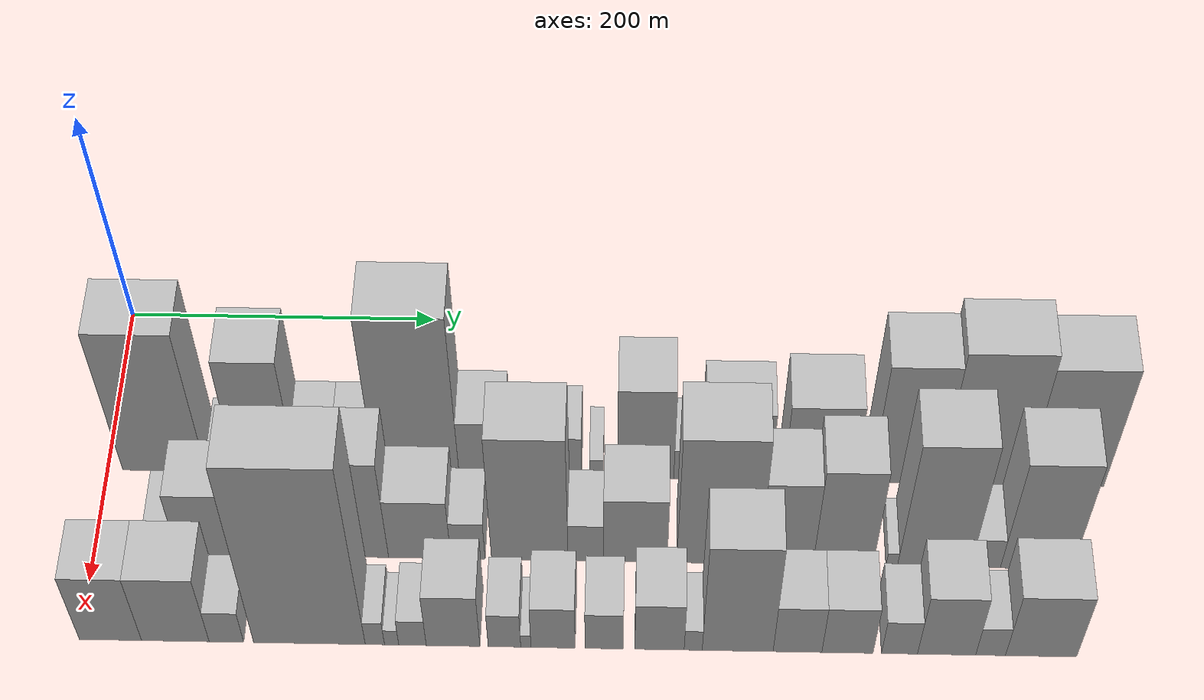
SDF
<sdf version="1.6">
 <world name="default">
  <model name="building_17">
   <static>1</static>
   <pose>100.0000 36.2147 0 0.000000 0.000000 0.000000</pose>
   <link name="link">
    <pose>0 0 75.00 0 0 0</pose>
    <collision name="collision"><geometry><box><size>40.0000 52.8672 150.0000</size></box></geometry></collision>
    <visual name="visual">
     <cast_shadows>0</cast_shadows>
     <geometry><box><size>40.0000 52.8672 150.0000</size></box></geometry>
     <material>
      <script>
       <uri>model://HANNAS_wall/materials/scripts</uri>
       <uri>model://HANNAS_wall/materials/textures</uri>
       <name>vrc/HANNAS_wall</name>
      </script>
     </material>
    </visual>
   </link>
  </model>
  <model name="building_18">
   <static>1</static>
   <pose>100.0000 71.1362 0 0.000000 0.000000 0.000000</pose>
   <link name="link">
    <pose>0 0 12.00 0 0 0</pose>
    <collision name="collision"><geometry><box><size>40.0000 10.9758 24.0000</size></box></geometry></collision>
    <visual name="visual">
     <cast_shadows>0</cast_shadows>
     <geometry><box><size>40.0000 10.9758 24.0000</size></box></geometry>
     <material>
      <script>
       <uri>model://HANNAS_wall/materials/scripts</uri>
       <uri>model://HANNAS_wall/materials/textures</uri>
       <name>vrc/HANNAS_wall</name>
      </script>
     </material>
    </visual>
   </link>
  </model>
  <model name="building_19">
   <static>1</static>
   <pose>100.0000 100.8529 0 0.000000 0.000000 0.000000</pose>
   <link name="link">
    <pose>0 0 61.50 0 0 0</pose>
    <collision name="collision"><geometry><box><size>40.0000 38.4576 123.0000</size></box></geometry></collision>
    <visual name="visual">
     <cast_shadows>0</cast_shadows>
     <geometry><box><size>40.0000 38.4576 123.0000</size></box></geometry>
     <material>
      <script>
       <uri>model://HANNAS_wall/materials/scripts</uri>
       <uri>model://HANNAS_wall/materials/textures</uri>
       <name>vrc/HANNAS_wall</name>
      </script>
     </material>
    </visual>
   </link>
  </model>
  <model name="building_20">
   <static>1</static>
   <pose>100.0000 132.8701 0 0.000000 0.000000 0.000000</pose>
   <link name="link">
    <pose>0 0 22.50 0 0 0</pose>
    <collision name="collision"><geometry><box><size>40.0000 25.5769 45.0000</size></box></geometry></collision>
    <visual name="visual">
     <cast_shadows>0</cast_shadows>
     <geometry><box><size>40.0000 25.5769 45.0000</size></box></geometry>
     <material>
      <script>
       <uri>model://HANNAS_wall/materials/scripts</uri>
       <uri>model://HANNAS_wall/materials/textures</uri>
       <name>vrc/HANNAS_wall</name>
      </script>
     </material>
    </visual>
   </link>
  </model>
  <model name="building_21">
   <static>1</static>
   <pose>100.0000 157.6431 0 0.000000 0.000000 0.000000</pose>
   <link name="link">
    <pose>0 0 22.50 0 0 0</pose>
    <collision name="collision"><geometry><box><size>40.0000 23.9690 45.0000</size></box></geometry></collision>
    <visual name="visual">
     <cast_shadows>0</cast_shadows>
     <geometry><box><size>40.0000 23.9690 45.0000</size></box></geometry>
     <material>
      <script>
       <uri>model://HANNAS_wall/materials/scripts</uri>
       <uri>model://HANNAS_wall/materials/textures</uri>
       <name>vrc/HANNAS_wall</name>
      </script>
     </material>
    </visual>
   </link>
  </model>
  <model name="building_22">
   <static>1</static>
   <pose>100.0000 196.2056 0 0.000000 0.000000 0.000000</pose>
   <link name="link">
    <pose>0 0 85.50 0 0 0</pose>
    <collision name="collision"><geometry><box><size>40.0000 53.1561 171.0000</size></box></geometry></collision>
    <visual name="visual">
     <cast_shadows>0</cast_shadows>
     <geometry><box><size>40.0000 53.1561 171.0000</size></box></geometry>
     <material>
      <script>
       <uri>model://HANNAS_wall/materials/scripts</uri>
       <uri>model://HANNAS_wall/materials/textures</uri>
       <name>vrc/HANNAS_wall</name>
      </script>
     </material>
    </visual>
   </link>
  </model>
  <model name="building_23">
   <static>1</static>
   <pose>100.0000 238.1051 0 0.000000 0.000000 0.000000</pose>
   <link name="link">
    <pose>0 0 30.00 0 0 0</pose>
    <collision name="collision"><geometry><box><size>40.0000 30.6430 60.0000</size></box></geometry></collision>
    <visual name="visual">
     <cast_shadows>0</cast_shadows>
     <geometry><box><size>40.0000 30.6430 60.0000</size></box></geometry>
     <material>
      <script>
       <uri>model://HANNAS_wall/materials/scripts</uri>
       <uri>model://HANNAS_wall/materials/textures</uri>
       <name>vrc/HANNAS_wall</name>
      </script>
     </material>
    </visual>
   </link>
  </model>
  <model name="building_24">
   <static>1</static>
   <pose>100.0000 265.1412 0 0.000000 0.000000 0.000000</pose>
   <link name="link">
    <pose>0 0 21.00 0 0 0</pose>
    <collision name="collision"><geometry><box><size>40.0000 23.4290 42.0000</size></box></geometry></collision>
    <visual name="visual">
     <cast_shadows>0</cast_shadows>
     <geometry><box><size>40.0000 23.4290 42.0000</size></box></geometry>
     <material>
      <script>
       <uri>model://HANNAS_wall/materials/scripts</uri>
       <uri>model://HANNAS_wall/materials/textures</uri>
       <name>vrc/HANNAS_wall</name>
      </script>
     </material>
    </visual>
   </link>
  </model>
  <model name="building_25">
   <static>1</static>
   <pose>100.0000 288.4493 0 0.000000 0.000000 0.000000</pose>
   <link name="link">
    <pose>0 0 22.50 0 0 0</pose>
    <collision name="collision"><geometry><box><size>40.0000 23.1873 45.0000</size></box></geometry></collision>
    <visual name="visual">
     <cast_shadows>0</cast_shadows>
     <geometry><box><size>40.0000 23.1873 45.0000</size></box></geometry>
     <material>
      <script>
       <uri>model://HANNAS_wall/materials/scripts</uri>
       <uri>model://HANNAS_wall/materials/textures</uri>
       <name>vrc/HANNAS_wall</name>
      </script>
     </material>
    </visual>
   </link>
  </model>
  <model name="building_26">
   <static>1</static>
   <pose>100.0000 309.3964 0 0.000000 0.000000 0.000000</pose>
   <link name="link">
    <pose>0 0 10.50 0 0 0</pose>
    <collision name="collision"><geometry><box><size>40.0000 8.7069 21.0000</size></box></geometry></collision>
    <visual name="visual">
     <cast_shadows>0</cast_shadows>
     <geometry><box><size>40.0000 8.7069 21.0000</size></box></geometry>
     <material>
      <script>
       <uri>model://HANNAS_wall/materials/scripts</uri>
       <uri>model://HANNAS_wall/materials/textures</uri>
       <name>vrc/HANNAS_wall</name>
      </script>
     </material>
    </visual>
   </link>
  </model>
  <model name="building_27">
   <static>1</static>
   <pose>100.0000 340.4459 0 0.000000 0.000000 0.000000</pose>
   <link name="link">
    <pose>0 0 49.50 0 0 0</pose>
    <collision name="collision"><geometry><box><size>40.0000 35.3920 99.0000</size></box></geometry></collision>
    <visual name="visual">
     <cast_shadows>0</cast_shadows>
     <geometry><box><size>40.0000 35.3920 99.0000</size></box></geometry>
     <material>
      <script>
       <uri>model://HANNAS_wall/materials/scripts</uri>
       <uri>model://HANNAS_wall/materials/textures</uri>
       <name>vrc/HANNAS_wall</name>
      </script>
     </material>
    </visual>
   </link>
  </model>
  <model name="building_28">
   <static>1</static>
   <pose>100.0000 367.2024 0 0.000000 0.000000 0.000000</pose>
   <link name="link">
    <pose>0 0 16.50 0 0 0</pose>
    <collision name="collision"><geometry><box><size>40.0000 18.1211 33.0000</size></box></geometry></collision>
    <visual name="visual">
     <cast_shadows>0</cast_shadows>
     <geometry><box><size>40.0000 18.1211 33.0000</size></box></geometry>
     <material>
      <script>
       <uri>model://HANNAS_wall/materials/scripts</uri>
       <uri>model://HANNAS_wall/materials/textures</uri>
       <name>vrc/HANNAS_wall</name>
      </script>
     </material>
    </visual>
   </link>
  </model>
  <model name="building_29">
   <static>1</static>
   <pose>100.0000 397.7496 0 0.000000 0.000000 0.000000</pose>
   <link name="link">
    <pose>0 0 37.50 0 0 0</pose>
    <collision name="collision"><geometry><box><size>40.0000 42.9734 75.0000</size></box></geometry></collision>
    <visual name="visual">
     <cast_shadows>0</cast_shadows>
     <geometry><box><size>40.0000 42.9734 75.0000</size></box></geometry>
     <material>
      <script>
       <uri>model://HANNAS_wall/materials/scripts</uri>
       <uri>model://HANNAS_wall/materials/textures</uri>
       <name>vrc/HANNAS_wall</name>
      </script>
     </material>
    </visual>
   </link>
  </model>
  <model name="building_30">
   <static>1</static>
   <pose>100.0000 449.7620 0 0.000000 0.000000 0.000000</pose>
   <link name="link">
    <pose>0 0 42.00 0 0 0</pose>
    <collision name="collision"><geometry><box><size>40.0000 45.0514 84.0000</size></box></geometry></collision>
    <visual name="visual">
     <cast_shadows>0</cast_shadows>
     <geometry><box><size>40.0000 45.0514 84.0000</size></box></geometry>
     <material>
      <script>
       <uri>model://HANNAS_wall/materials/scripts</uri>
       <uri>model://HANNAS_wall/materials/textures</uri>
       <name>vrc/HANNAS_wall</name>
      </script>
     </material>
    </visual>
   </link>
  </model>
  <model name="building_31">
   <static>1</static>
   <pose>100.0000 503.7873 0 0.000000 0.000000 0.000000</pose>
   <link name="link">
    <pose>0 0 64.50 0 0 0</pose>
    <collision name="collision"><geometry><box><size>40.0000 42.9991 129.0000</size></box></geometry></collision>
    <visual name="visual">
     <cast_shadows>0</cast_shadows>
     <geometry><box><size>40.0000 42.9991 129.0000</size></box></geometry>
     <material>
      <script>
       <uri>model://HANNAS_wall/materials/scripts</uri>
       <uri>model://HANNAS_wall/materials/textures</uri>
       <name>vrc/HANNAS_wall</name>
      </script>
     </material>
    </visual>
   </link>
  </model>
  <model name="building_32">
   <static>1</static>
   <pose>100.0000 552.1299 0 0.000000 0.000000 0.000000</pose>
   <link name="link">
    <pose>0 0 72.00 0 0 0</pose>
    <collision name="collision"><geometry><box><size>40.0000 53.6861 144.0000</size></box></geometry></collision>
    <visual name="visual">
     <cast_shadows>0</cast_shadows>
     <geometry><box><size>40.0000 53.6861 144.0000</size></box></geometry>
     <material>
      <script>
       <uri>model://HANNAS_wall/materials/scripts</uri>
       <uri>model://HANNAS_wall/materials/textures</uri>
       <name>vrc/HANNAS_wall</name>
      </script>
     </material>
    </visual>
   </link>
  </model>
  <model name="building_33">
   <static>1</static>
   <pose>100.0000 603.9876 0 0.000000 0.000000 0.000000</pose>
   <link name="link">
    <pose>0 0 64.50 0 0 0</pose>
    <collision name="collision"><geometry><box><size>40.0000 50.0294 129.0000</size></box></geometry></collision>
    <visual name="visual">
     <cast_shadows>0</cast_shadows>
     <geometry><box><size>40.0000 50.0294 129.0000</size></box></geometry>
     <material>
      <script>
       <uri>model://HANNAS_wall/materials/scripts</uri>
       <uri>model://HANNAS_wall/materials/textures</uri>
       <name>vrc/HANNAS_wall</name>
      </script>
     </material>
    </visual>
   </link>
  </model>
  <model name="building_56">
   <static>1</static>
   <pose>160.0000 43.5094 0 0.000000 0.000000 0.000000</pose>
   <link name="link">
    <pose>0 0 16.50 0 0 0</pose>
    <collision name="collision"><geometry><box><size>40.0000 16.6226 33.0000</size></box></geometry></collision>
    <visual name="visual">
     <cast_shadows>0</cast_shadows>
     <geometry><box><size>40.0000 16.6226 33.0000</size></box></geometry>
     <material>
      <script>
       <uri>model://HANNAS_wall/materials/scripts</uri>
       <uri>model://HANNAS_wall/materials/textures</uri>
       <name>vrc/HANNAS_wall</name>
      </script>
     </material>
    </visual>
   </link>
  </model>
  <model name="building_57">
   <static>1</static>
   <pose>160.0000 70.5912 0 0.000000 0.000000 0.000000</pose>
   <link name="link">
    <pose>0 0 34.50 0 0 0</pose>
    <collision name="collision"><geometry><box><size>40.0000 37.5410 69.0000</size></box></geometry></collision>
    <visual name="visual">
     <cast_shadows>0</cast_shadows>
     <geometry><box><size>40.0000 37.5410 69.0000</size></box></geometry>
     <material>
      <script>
       <uri>model://HANNAS_wall/materials/scripts</uri>
       <uri>model://HANNAS_wall/materials/textures</uri>
       <name>vrc/HANNAS_wall</name>
      </script>
     </material>
    </visual>
   </link>
  </model>
  <model name="building_58">
   <static>1</static>
   <pose>160.0000 104.3225 0 0.000000 0.000000 0.000000</pose>
   <link name="link">
    <pose>0 0 28.50 0 0 0</pose>
    <collision name="collision"><geometry><box><size>40.0000 29.9216 57.0000</size></box></geometry></collision>
    <visual name="visual">
     <cast_shadows>0</cast_shadows>
     <geometry><box><size>40.0000 29.9216 57.0000</size></box></geometry>
     <material>
      <script>
       <uri>model://HANNAS_wall/materials/scripts</uri>
       <uri>model://HANNAS_wall/materials/textures</uri>
       <name>vrc/HANNAS_wall</name>
      </script>
     </material>
    </visual>
   </link>
  </model>
  <model name="building_59">
   <static>1</static>
   <pose>160.0000 130.3247 0 0.000000 0.000000 0.000000</pose>
   <link name="link">
    <pose>0 0 21.00 0 0 0</pose>
    <collision name="collision"><geometry><box><size>40.0000 22.0829 42.0000</size></box></geometry></collision>
    <visual name="visual">
     <cast_shadows>0</cast_shadows>
     <geometry><box><size>40.0000 22.0829 42.0000</size></box></geometry>
     <material>
      <script>
       <uri>model://HANNAS_wall/materials/scripts</uri>
       <uri>model://HANNAS_wall/materials/textures</uri>
       <name>vrc/HANNAS_wall</name>
      </script>
     </material>
    </visual>
   </link>
  </model>
  <model name="building_60">
   <static>1</static>
   <pose>160.0000 161.8970 0 0.000000 0.000000 0.000000</pose>
   <link name="link">
    <pose>0 0 54.00 0 0 0</pose>
    <collision name="collision"><geometry><box><size>40.0000 41.0616 108.0000</size></box></geometry></collision>
    <visual name="visual">
     <cast_shadows>0</cast_shadows>
     <geometry><box><size>40.0000 41.0616 108.0000</size></box></geometry>
     <material>
      <script>
       <uri>model://HANNAS_wall/materials/scripts</uri>
       <uri>model://HANNAS_wall/materials/textures</uri>
       <name>vrc/HANNAS_wall</name>
      </script>
     </material>
    </visual>
   </link>
  </model>
  <model name="building_61">
   <static>1</static>
   <pose>160.0000 201.6902 0 0.000000 0.000000 0.000000</pose>
   <link name="link">
    <pose>0 0 33.00 0 0 0</pose>
    <collision name="collision"><geometry><box><size>40.0000 38.5248 66.0000</size></box></geometry></collision>
    <visual name="visual">
     <cast_shadows>0</cast_shadows>
     <geometry><box><size>40.0000 38.5248 66.0000</size></box></geometry>
     <material>
      <script>
       <uri>model://HANNAS_wall/materials/scripts</uri>
       <uri>model://HANNAS_wall/materials/textures</uri>
       <name>vrc/HANNAS_wall</name>
      </script>
     </material>
    </visual>
   </link>
  </model>
  <model name="building_62">
   <static>1</static>
   <pose>160.0000 231.4833 0 0.000000 0.000000 0.000000</pose>
   <link name="link">
    <pose>0 0 21.00 0 0 0</pose>
    <collision name="collision"><geometry><box><size>40.0000 21.0615 42.0000</size></box></geometry></collision>
    <visual name="visual">
     <cast_shadows>0</cast_shadows>
     <geometry><box><size>40.0000 21.0615 42.0000</size></box></geometry>
     <material>
      <script>
       <uri>model://HANNAS_wall/materials/scripts</uri>
       <uri>model://HANNAS_wall/materials/textures</uri>
       <name>vrc/HANNAS_wall</name>
      </script>
     </material>
    </visual>
   </link>
  </model>
  <model name="building_63">
   <static>1</static>
   <pose>160.0000 269.6209 0 0.000000 0.000000 0.000000</pose>
   <link name="link">
    <pose>0 0 69.00 0 0 0</pose>
    <collision name="collision"><geometry><box><size>40.0000 47.2138 138.0000</size></box></geometry></collision>
    <visual name="visual">
     <cast_shadows>0</cast_shadows>
     <geometry><box><size>40.0000 47.2138 138.0000</size></box></geometry>
     <material>
      <script>
       <uri>model://HANNAS_wall/materials/scripts</uri>
       <uri>model://HANNAS_wall/materials/textures</uri>
       <name>vrc/HANNAS_wall</name>
      </script>
     </material>
    </visual>
   </link>
  </model>
  <model name="building_64">
   <static>1</static>
   <pose>160.0000 304.1565 0 0.000000 0.000000 0.000000</pose>
   <link name="link">
    <pose>0 0 21.00 0 0 0</pose>
    <collision name="collision"><geometry><box><size>40.0000 21.8574 42.0000</size></box></geometry></collision>
    <visual name="visual">
     <cast_shadows>0</cast_shadows>
     <geometry><box><size>40.0000 21.8574 42.0000</size></box></geometry>
     <material>
      <script>
       <uri>model://HANNAS_wall/materials/scripts</uri>
       <uri>model://HANNAS_wall/materials/textures</uri>
       <name>vrc/HANNAS_wall</name>
      </script>
     </material>
    </visual>
   </link>
  </model>
  <model name="building_65">
   <static>1</static>
   <pose>160.0000 334.6656 0 0.000000 0.000000 0.000000</pose>
   <link name="link">
    <pose>0 0 36.00 0 0 0</pose>
    <collision name="collision"><geometry><box><size>40.0000 39.1609 72.0000</size></box></geometry></collision>
    <visual name="visual">
     <cast_shadows>0</cast_shadows>
     <geometry><box><size>40.0000 39.1609 72.0000</size></box></geometry>
     <material>
      <script>
       <uri>model://HANNAS_wall/materials/scripts</uri>
       <uri>model://HANNAS_wall/materials/textures</uri>
       <name>vrc/HANNAS_wall</name>
      </script>
     </material>
    </visual>
   </link>
  </model>
  <model name="building_66">
   <static>1</static>
   <pose>160.0000 385.7366 0 0.000000 0.000000 0.000000</pose>
   <link name="link">
    <pose>0 0 70.50 0 0 0</pose>
    <collision name="collision"><geometry><box><size>40.0000 50.9811 141.0000</size></box></geometry></collision>
    <visual name="visual">
     <cast_shadows>0</cast_shadows>
     <geometry><box><size>40.0000 50.9811 141.0000</size></box></geometry>
     <material>
      <script>
       <uri>model://HANNAS_wall/materials/scripts</uri>
       <uri>model://HANNAS_wall/materials/textures</uri>
       <name>vrc/HANNAS_wall</name>
      </script>
     </material>
    </visual>
   </link>
  </model>
  <model name="building_67">
   <static>1</static>
   <pose>160.0000 427.6264 0 0.000000 0.000000 0.000000</pose>
   <link name="link">
    <pose>0 0 46.50 0 0 0</pose>
    <collision name="collision"><geometry><box><size>40.0000 32.7985 93.0000</size></box></geometry></collision>
    <visual name="visual">
     <cast_shadows>0</cast_shadows>
     <geometry><box><size>40.0000 32.7985 93.0000</size></box></geometry>
     <material>
      <script>
       <uri>model://HANNAS_wall/materials/scripts</uri>
       <uri>model://HANNAS_wall/materials/textures</uri>
       <name>vrc/HANNAS_wall</name>
      </script>
     </material>
    </visual>
   </link>
  </model>
  <model name="building_68">
   <static>1</static>
   <pose>160.0000 462.5270 0 0.000000 0.000000 0.000000</pose>
   <link name="link">
    <pose>0 0 54.00 0 0 0</pose>
    <collision name="collision"><geometry><box><size>40.0000 37.0028 108.0000</size></box></geometry></collision>
    <visual name="visual">
     <cast_shadows>0</cast_shadows>
     <geometry><box><size>40.0000 37.0028 108.0000</size></box></geometry>
     <material>
      <script>
       <uri>model://HANNAS_wall/materials/scripts</uri>
       <uri>model://HANNAS_wall/materials/textures</uri>
       <name>vrc/HANNAS_wall</name>
      </script>
     </material>
    </visual>
   </link>
  </model>
  <model name="building_69">
   <static>1</static>
   <pose>160.0000 492.5327 0 0.000000 0.000000 0.000000</pose>
   <link name="link">
    <pose>0 0 7.50 0 0 0</pose>
    <collision name="collision"><geometry><box><size>40.0000 7.0085 15.0000</size></box></geometry></collision>
    <visual name="visual">
     <cast_shadows>0</cast_shadows>
     <geometry><box><size>40.0000 7.0085 15.0000</size></box></geometry>
     <material>
      <script>
       <uri>model://HANNAS_wall/materials/scripts</uri>
       <uri>model://HANNAS_wall/materials/textures</uri>
       <name>vrc/HANNAS_wall</name>
      </script>
     </material>
    </visual>
   </link>
  </model>
  <model name="building_70">
   <static>1</static>
   <pose>160.0000 518.5182 0 0.000000 0.000000 0.000000</pose>
   <link name="link">
    <pose>0 0 69.00 0 0 0</pose>
    <collision name="collision"><geometry><box><size>40.0000 44.9626 138.0000</size></box></geometry></collision>
    <visual name="visual">
     <cast_shadows>0</cast_shadows>
     <geometry><box><size>40.0000 44.9626 138.0000</size></box></geometry>
     <material>
      <script>
       <uri>model://HANNAS_wall/materials/scripts</uri>
       <uri>model://HANNAS_wall/materials/textures</uri>
       <name>vrc/HANNAS_wall</name>
      </script>
     </material>
    </visual>
   </link>
  </model>
  <model name="building_71">
   <static>1</static>
   <pose>160.0000 550.1503 0 0.000000 0.000000 0.000000</pose>
   <link name="link">
    <pose>0 0 16.50 0 0 0</pose>
    <collision name="collision"><geometry><box><size>40.0000 18.3016 33.0000</size></box></geometry></collision>
    <visual name="visual">
     <cast_shadows>0</cast_shadows>
     <geometry><box><size>40.0000 18.3016 33.0000</size></box></geometry>
     <material>
      <script>
       <uri>model://HANNAS_wall/materials/scripts</uri>
       <uri>model://HANNAS_wall/materials/textures</uri>
       <name>vrc/HANNAS_wall</name>
      </script>
     </material>
    </visual>
   </link>
  </model>
  <model name="building_72">
   <static>1</static>
   <pose>160.0000 581.3278 0 0.000000 0.000000 0.000000</pose>
   <link name="link">
    <pose>0 0 60.00 0 0 0</pose>
    <collision name="collision"><geometry><box><size>40.0000 44.0534 120.0000</size></box></geometry></collision>
    <visual name="visual">
     <cast_shadows>0</cast_shadows>
     <geometry><box><size>40.0000 44.0534 120.0000</size></box></geometry>
     <material>
      <script>
       <uri>model://HANNAS_wall/materials/scripts</uri>
       <uri>model://HANNAS_wall/materials/textures</uri>
       <name>vrc/HANNAS_wall</name>
      </script>
     </material>
    </visual>
   </link>
  </model>
  <model name="building_90">
   <static>1</static>
   <pose>220.0000 18.6313 0 0.000000 0.000000 0.000000</pose>
   <link name="link">
    <pose>0 0 37.50 0 0 0</pose>
    <collision name="collision"><geometry><box><size>40.0000 37.6420 75.0000</size></box></geometry></collision>
    <visual name="visual">
     <cast_shadows>0</cast_shadows>
     <geometry><box><size>40.0000 37.6420 75.0000</size></box></geometry>
     <material>
      <script>
       <uri>model://HANNAS_wall/materials/scripts</uri>
       <uri>model://HANNAS_wall/materials/textures</uri>
       <name>vrc/HANNAS_wall</name>
      </script>
     </material>
    </visual>
   </link>
  </model>
  <model name="building_91">
   <static>1</static>
   <pose>220.0000 57.8732 0 0.000000 0.000000 0.000000</pose>
   <link name="link">
    <pose>0 0 37.50 0 0 0</pose>
    <collision name="collision"><geometry><box><size>40.0000 40.8420 75.0000</size></box></geometry></collision>
    <visual name="visual">
     <cast_shadows>0</cast_shadows>
     <geometry><box><size>40.0000 40.8420 75.0000</size></box></geometry>
     <material>
      <script>
       <uri>model://HANNAS_wall/materials/scripts</uri>
       <uri>model://HANNAS_wall/materials/textures</uri>
       <name>vrc/HANNAS_wall</name>
      </script>
     </material>
    </visual>
   </link>
  </model>
  <model name="building_92">
   <static>1</static>
   <pose>220.0000 88.7363 0 0.000000 0.000000 0.000000</pose>
   <link name="link">
    <pose>0 0 18.00 0 0 0</pose>
    <collision name="collision"><geometry><box><size>40.0000 20.8841 36.0000</size></box></geometry></collision>
    <visual name="visual">
     <cast_shadows>0</cast_shadows>
     <geometry><box><size>40.0000 20.8841 36.0000</size></box></geometry>
     <material>
      <script>
       <uri>model://HANNAS_wall/materials/scripts</uri>
       <uri>model://HANNAS_wall/materials/textures</uri>
       <name>vrc/HANNAS_wall</name>
      </script>
     </material>
    </visual>
   </link>
  </model>
  <model name="building_93">
   <static>1</static>
   <pose>220.0000 138.8895 0 0.000000 0.000000 0.000000</pose>
   <link name="link">
    <pose>0 0 100.50 0 0 0</pose>
    <collision name="collision"><geometry><box><size>40.0000 67.4222 201.0000</size></box></geometry></collision>
    <visual name="visual">
     <cast_shadows>0</cast_shadows>
     <geometry><box><size>40.0000 67.4222 201.0000</size></box></geometry>
     <material>
      <script>
       <uri>model://HANNAS_wall/materials/scripts</uri>
       <uri>model://HANNAS_wall/materials/textures</uri>
       <name>vrc/HANNAS_wall</name>
      </script>
     </material>
    </visual>
   </link>
  </model>
  <model name="building_94">
   <static>1</static>
   <pose>220.0000 178.4116 0 0.000000 0.000000 0.000000</pose>
   <link name="link">
    <pose>0 0 13.50 0 0 0</pose>
    <collision name="collision"><geometry><box><size>40.0000 11.6221 27.0000</size></box></geometry></collision>
    <visual name="visual">
     <cast_shadows>0</cast_shadows>
     <geometry><box><size>40.0000 11.6221 27.0000</size></box></geometry>
     <material>
      <script>
       <uri>model://HANNAS_wall/materials/scripts</uri>
       <uri>model://HANNAS_wall/materials/textures</uri>
       <name>vrc/HANNAS_wall</name>
      </script>
     </material>
    </visual>
   </link>
  </model>
  <model name="building_95">
   <static>1</static>
   <pose>220.0000 188.5057 0 0.000000 0.000000 0.000000</pose>
   <link name="link">
    <pose>0 0 9.00 0 0 0</pose>
    <collision name="collision"><geometry><box><size>40.0000 8.5661 18.0000</size></box></geometry></collision>
    <visual name="visual">
     <cast_shadows>0</cast_shadows>
     <geometry><box><size>40.0000 8.5661 18.0000</size></box></geometry>
     <material>
      <script>
       <uri>model://HANNAS_wall/materials/scripts</uri>
       <uri>model://HANNAS_wall/materials/textures</uri>
       <name>vrc/HANNAS_wall</name>
      </script>
     </material>
    </visual>
   </link>
  </model>
  <model name="building_96">
   <static>1</static>
   <pose>220.0000 201.0947 0 0.000000 0.000000 0.000000</pose>
   <link name="link">
    <pose>0 0 15.00 0 0 0</pose>
    <collision name="collision"><geometry><box><size>40.0000 16.6120 30.0000</size></box></geometry></collision>
    <visual name="visual">
     <cast_shadows>0</cast_shadows>
     <geometry><box><size>40.0000 16.6120 30.0000</size></box></geometry>
     <material>
      <script>
       <uri>model://HANNAS_wall/materials/scripts</uri>
       <uri>model://HANNAS_wall/materials/textures</uri>
       <name>vrc/HANNAS_wall</name>
      </script>
     </material>
    </visual>
   </link>
  </model>
  <model name="building_97">
   <static>1</static>
   <pose>220.0000 225.5887 0 0.000000 0.000000 0.000000</pose>
   <link name="link">
    <pose>0 0 30.00 0 0 0</pose>
    <collision name="collision"><geometry><box><size>40.0000 32.3761 60.0000</size></box></geometry></collision>
    <visual name="visual">
     <cast_shadows>0</cast_shadows>
     <geometry><box><size>40.0000 32.3761 60.0000</size></box></geometry>
     <material>
      <script>
       <uri>model://HANNAS_wall/materials/scripts</uri>
       <uri>model://HANNAS_wall/materials/textures</uri>
       <name>vrc/HANNAS_wall</name>
      </script>
     </material>
    </visual>
   </link>
  </model>
  <model name="building_98">
   <static>1</static>
   <pose>220.0000 256.5649 0 0.000000 0.000000 0.000000</pose>
   <link name="link">
    <pose>0 0 19.50 0 0 0</pose>
    <collision name="collision"><geometry><box><size>40.0000 19.5763 39.0000</size></box></geometry></collision>
    <visual name="visual">
     <cast_shadows>0</cast_shadows>
     <geometry><box><size>40.0000 19.5763 39.0000</size></box></geometry>
     <material>
      <script>
       <uri>model://HANNAS_wall/materials/scripts</uri>
       <uri>model://HANNAS_wall/materials/textures</uri>
       <name>vrc/HANNAS_wall</name>
      </script>
     </material>
    </visual>
   </link>
  </model>
  <model name="building_99">
   <static>1</static>
   <pose>220.0000 269.4393 0 0.000000 0.000000 0.000000</pose>
   <link name="link">
    <pose>0 0 7.50 0 0 0</pose>
    <collision name="collision"><geometry><box><size>40.0000 6.1726 15.0000</size></box></geometry></collision>
    <visual name="visual">
     <cast_shadows>0</cast_shadows>
     <geometry><box><size>40.0000 6.1726 15.0000</size></box></geometry>
     <material>
      <script>
       <uri>model://HANNAS_wall/materials/scripts</uri>
       <uri>model://HANNAS_wall/materials/textures</uri>
       <name>vrc/HANNAS_wall</name>
      </script>
     </material>
    </visual>
   </link>
  </model>
  <model name="building_100">
   <static>1</static>
   <pose>220.0000 285.8251 0 0.000000 0.000000 0.000000</pose>
   <link name="link">
    <pose>0 0 24.00 0 0 0</pose>
    <collision name="collision"><geometry><box><size>40.0000 26.5989 48.0000</size></box></geometry></collision>
    <visual name="visual">
     <cast_shadows>0</cast_shadows>
     <geometry><box><size>40.0000 26.5989 48.0000</size></box></geometry>
     <material>
      <script>
       <uri>model://HANNAS_wall/materials/scripts</uri>
       <uri>model://HANNAS_wall/materials/textures</uri>
       <name>vrc/HANNAS_wall</name>
      </script>
     </material>
    </visual>
   </link>
  </model>
  <model name="building_101">
   <static>1</static>
   <pose>220.0000 316.5868 0 0.000000 0.000000 0.000000</pose>
   <link name="link">
    <pose>0 0 21.00 0 0 0</pose>
    <collision name="collision"><geometry><box><size>40.0000 22.9246 42.0000</size></box></geometry></collision>
    <visual name="visual">
     <cast_shadows>0</cast_shadows>
     <geometry><box><size>40.0000 22.9246 42.0000</size></box></geometry>
     <material>
      <script>
       <uri>model://HANNAS_wall/materials/scripts</uri>
       <uri>model://HANNAS_wall/materials/textures</uri>
       <name>vrc/HANNAS_wall</name>
      </script>
     </material>
    </visual>
   </link>
  </model>
  <model name="building_102">
   <static>1</static>
   <pose>220.0000 349.8878 0 0.000000 0.000000 0.000000</pose>
   <link name="link">
    <pose>0 0 27.00 0 0 0</pose>
    <collision name="collision"><geometry><box><size>40.0000 29.6775 54.0000</size></box></geometry></collision>
    <visual name="visual">
     <cast_shadows>0</cast_shadows>
     <geometry><box><size>40.0000 29.6775 54.0000</size></box></geometry>
     <material>
      <script>
       <uri>model://HANNAS_wall/materials/scripts</uri>
       <uri>model://HANNAS_wall/materials/textures</uri>
       <name>vrc/HANNAS_wall</name>
      </script>
     </material>
    </visual>
   </link>
  </model>
  <model name="building_103">
   <static>1</static>
   <pose>220.0000 370.1521 0 0.000000 0.000000 0.000000</pose>
   <link name="link">
    <pose>0 0 12.00 0 0 0</pose>
    <collision name="collision"><geometry><box><size>40.0000 10.8512 24.0000</size></box></geometry></collision>
    <visual name="visual">
     <cast_shadows>0</cast_shadows>
     <geometry><box><size>40.0000 10.8512 24.0000</size></box></geometry>
     <material>
      <script>
       <uri>model://HANNAS_wall/materials/scripts</uri>
       <uri>model://HANNAS_wall/materials/textures</uri>
       <name>vrc/HANNAS_wall</name>
      </script>
     </material>
    </visual>
   </link>
  </model>
  <model name="building_104">
   <static>1</static>
   <pose>220.0000 396.9122 0 0.000000 0.000000 0.000000</pose>
   <link name="link">
    <pose>0 0 61.50 0 0 0</pose>
    <collision name="collision"><geometry><box><size>40.0000 42.6690 123.0000</size></box></geometry></collision>
    <visual name="visual">
     <cast_shadows>0</cast_shadows>
     <geometry><box><size>40.0000 42.6690 123.0000</size></box></geometry>
     <material>
      <script>
       <uri>model://HANNAS_wall/materials/scripts</uri>
       <uri>model://HANNAS_wall/materials/textures</uri>
       <name>vrc/HANNAS_wall</name>
      </script>
     </material>
    </visual>
   </link>
  </model>
  <model name="building_105">
   <static>1</static>
   <pose>220.0000 432.8962 0 0.000000 0.000000 0.000000</pose>
   <link name="link">
    <pose>0 0 27.00 0 0 0</pose>
    <collision name="collision"><geometry><box><size>40.0000 29.2990 54.0000</size></box></geometry></collision>
    <visual name="visual">
     <cast_shadows>0</cast_shadows>
     <geometry><box><size>40.0000 29.2990 54.0000</size></box></geometry>
     <material>
      <script>
       <uri>model://HANNAS_wall/materials/scripts</uri>
       <uri>model://HANNAS_wall/materials/textures</uri>
       <name>vrc/HANNAS_wall</name>
      </script>
     </material>
    </visual>
   </link>
  </model>
  <model name="building_106">
   <static>1</static>
   <pose>220.0000 462.9451 0 0.000000 0.000000 0.000000</pose>
   <link name="link">
    <pose>0 0 27.00 0 0 0</pose>
    <collision name="collision"><geometry><box><size>40.0000 30.7990 54.0000</size></box></geometry></collision>
    <visual name="visual">
     <cast_shadows>0</cast_shadows>
     <geometry><box><size>40.0000 30.7990 54.0000</size></box></geometry>
     <material>
      <script>
       <uri>model://HANNAS_wall/materials/scripts</uri>
       <uri>model://HANNAS_wall/materials/textures</uri>
       <name>vrc/HANNAS_wall</name>
      </script>
     </material>
    </visual>
   </link>
  </model>
  <model name="building_107">
   <static>1</static>
   <pose>220.0000 494.1661 0 0.000000 0.000000 0.000000</pose>
   <link name="link">
    <pose>0 0 19.50 0 0 0</pose>
    <collision name="collision"><geometry><box><size>40.0000 21.6430 39.0000</size></box></geometry></collision>
    <visual name="visual">
     <cast_shadows>0</cast_shadows>
     <geometry><box><size>40.0000 21.6430 39.0000</size></box></geometry>
     <material>
      <script>
       <uri>model://HANNAS_wall/materials/scripts</uri>
       <uri>model://HANNAS_wall/materials/textures</uri>
       <name>vrc/HANNAS_wall</name>
      </script>
     </material>
    </visual>
   </link>
  </model>
  <model name="building_108">
   <static>1</static>
   <pose>220.0000 522.4772 0 0.000000 0.000000 0.000000</pose>
   <link name="link">
    <pose>0 0 34.50 0 0 0</pose>
    <collision name="collision"><geometry><box><size>40.0000 34.9790 69.0000</size></box></geometry></collision>
    <visual name="visual">
     <cast_shadows>0</cast_shadows>
     <geometry><box><size>40.0000 34.9790 69.0000</size></box></geometry>
     <material>
      <script>
       <uri>model://HANNAS_wall/materials/scripts</uri>
       <uri>model://HANNAS_wall/materials/textures</uri>
       <name>vrc/HANNAS_wall</name>
      </script>
     </material>
    </visual>
   </link>
  </model>
  <model name="building_109">
   <static>1</static>
   <pose>220.0000 548.9012 0 0.000000 0.000000 0.000000</pose>
   <link name="link">
    <pose>0 0 16.50 0 0 0</pose>
    <collision name="collision"><geometry><box><size>40.0000 17.8691 33.0000</size></box></geometry></collision>
    <visual name="visual">
     <cast_shadows>0</cast_shadows>
     <geometry><box><size>40.0000 17.8691 33.0000</size></box></geometry>
     <material>
      <script>
       <uri>model://HANNAS_wall/materials/scripts</uri>
       <uri>model://HANNAS_wall/materials/textures</uri>
       <name>vrc/HANNAS_wall</name>
      </script>
     </material>
    </visual>
   </link>
  </model>
  <model name="building_110">
   <static>1</static>
   <pose>220.0000 579.1797 0 0.000000 0.000000 0.000000</pose>
   <link name="link">
    <pose>0 0 36.00 0 0 0</pose>
    <collision name="collision"><geometry><box><size>40.0000 42.6878 72.0000</size></box></geometry></collision>
    <visual name="visual">
     <cast_shadows>0</cast_shadows>
     <geometry><box><size>40.0000 42.6878 72.0000</size></box></geometry>
     <material>
      <script>
       <uri>model://HANNAS_wall/materials/scripts</uri>
       <uri>model://HANNAS_wall/materials/textures</uri>
       <name>vrc/HANNAS_wall</name>
      </script>
     </material>
    </visual>
   </link>
  </model>
 </world>
</sdf>
